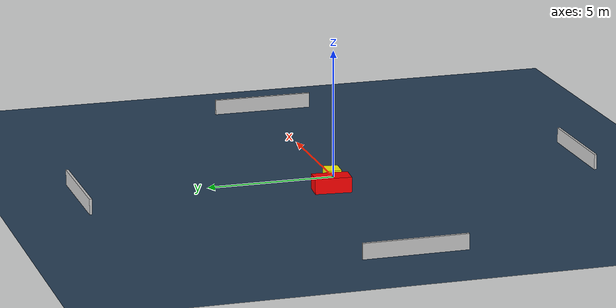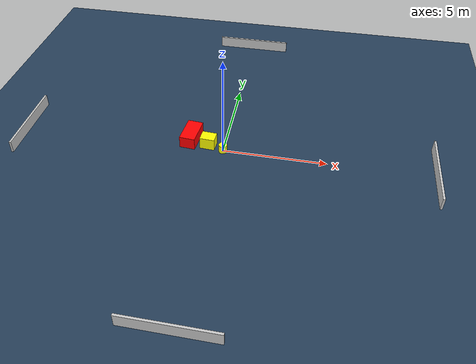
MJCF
<?xml version="1.0" ?>
<mujoco model="generated_environment">
  <option timestep="0.01" integrator="RK4" cone="elliptic"/>
  <default>
    <geom density="1"/>
  </default>
  <asset>
    <texture builtin="gradient" height="3072" name="skybox" rgb1="0.3 0.5 0.7" rgb2="0 0 0" type="skybox" width="512"/>
    <texture builtin="checker" height="300" name="groundplane" rgb1="0.2 0.3 0.4" rgb2="0.1 0.2 0.3" type="2d" width="300"/>
    <material name="groundplane" reflectance="0.2" texrepeat="5 5" texture="groundplane"/>
  </asset>
  <worldbody>
    <light dir="0 0 -1" directional="true" pos="0 0 1.5"/>
    <geom condim="3" friction="0.5 0.005 0.001" material="groundplane" name="floor" pos="0 0 0" size="0 0 0.05" type="plane"/>
    <body name="walls">
      <geom name="wall_1" condim="4" pos="-10.0 0.0 0.3" rgba="0.800000011920929 0.800000011920929 0.800000011920929 1.0" size="0.05 2.0 0.3" type="box"/>
      <geom name="wall_2" condim="4" pos="10.0 0.0 0.3" rgba="0.800000011920929 0.800000011920929 0.800000011920929 1.0" size="0.05 2.0 0.3" type="box"/>
      <geom name="wall_3" condim="4" pos="0.0 -10.0 0.3" rgba="0.800000011920929 0.800000011920929 0.800000011920929 1.0" size="2.0 0.05 0.3" type="box"/>
      <geom name="wall_4" condim="4" pos="0.0 10.0 0.3" rgba="0.800000011920929 0.800000011920929 0.800000011920929 1.0" size="2.0 0.05 0.3" type="box"/>
    </body>
    <body name="robot">
      <joint name="joint_x" type="slide" pos="0 0 0" axis="1 0 0"/>
      <joint name="joint_y" type="slide" pos="0 0 0" axis="0 1 0"/>
      <geom name="robot" type="cylinder" pos="0.0 0.0 0.2" size="0.2 0.2 0.0" mass="5.0" friction="1.0 0.005 0.0001" condim="4" rgba="1.0 1.0 0.0 1.0"/>
    </body>
    <body name="obstacle_1_movable">
      <geom name="obstacle_1_movable" condim="4" pos="-0.7739943128569102 0.29064460157060173 0.3" euler="0 0 356.2119295363346" friction="0.0 0.005 0.001" rgba="1.0 1.0 0.0 1.0" size="0.3618739902535221 0.2908554273016064 0.3" type="box" mass="0.1"/>
      <joint type="free"/>
    </body>
    <body name="obstacle_2_static">
      <geom name="obstacle_2_static" condim="4" pos="-1.6932170104584938 0.5940057873248187 0.3" euler="0 0 264.75266368306325" friction="0.0 0.005 0.001" rgba="1.0 0.0 0.0 1.0" size="0.7046449035725695 0.3821573859286137 0.3" type="box"/>
    </body>
  </worldbody>
  <actuator>
    <motor name="actuator_x" joint="joint_x" gear="1" ctrlrange="-1 1"/>
    <motor name="actuator_y" joint="joint_y" gear="1" ctrlrange="-1 1"/>
  </actuator>
</mujoco>
